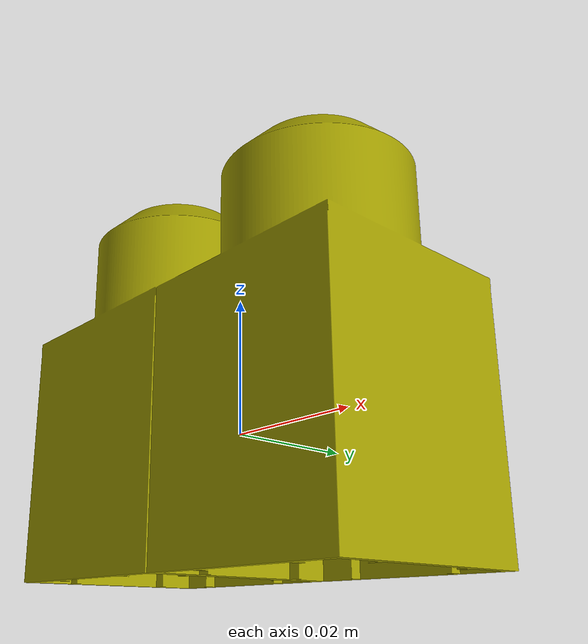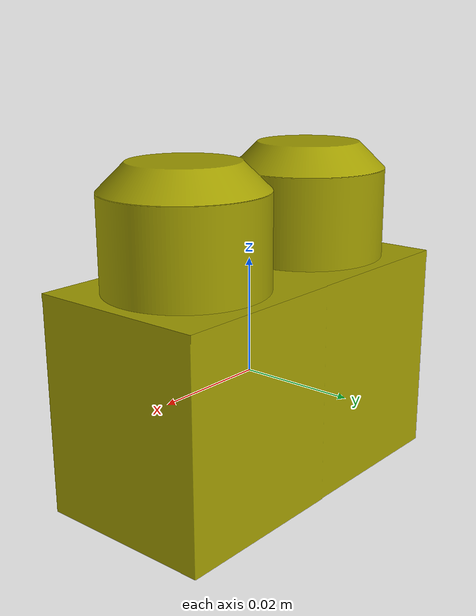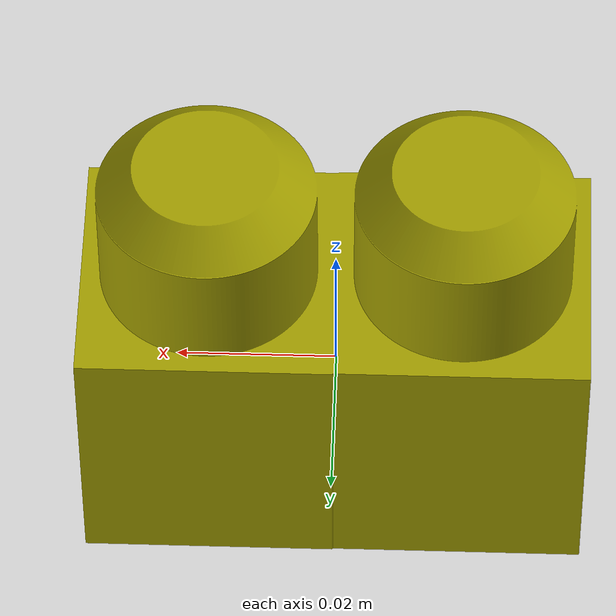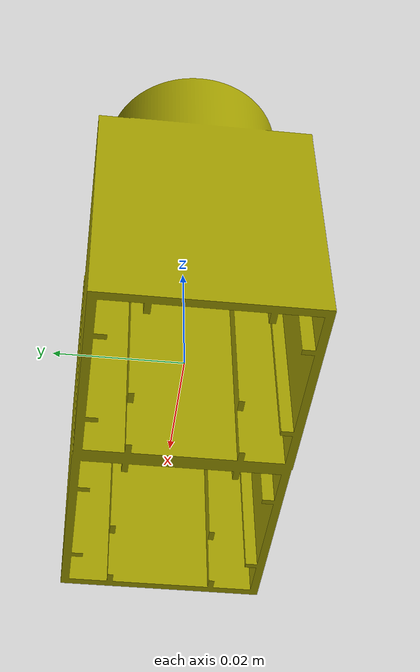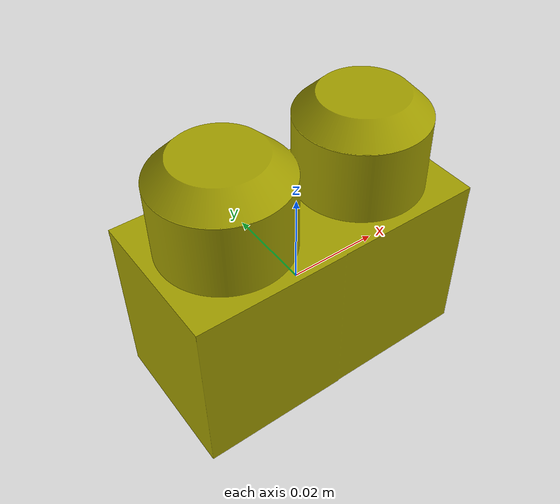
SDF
<?xml version='1.0'?>
<sdf version='1.4'> <!-- changed from 1.5 to be compatible with Gazebo2 -->
  <model name="megabloks1x2_yellow">
    <static>false</static>
    <link name="blok">
      <pose>0 0 0 0 0 0</pose>
      <collision name="collision">
        <geometry>
          <box>
	  <size>0.062600000000000003 0.0313 0.0426</size>
          </box>
        </geometry>
	<surface>
	  <friction>
	    <ode>
	      <mu>0.4</mu>
	    </ode>
	  </friction>
	</surface>
      </collision>
      <inertial>
      <mass value="0.0060000000000000001"/>
	<inertia ixx="0.00001" iyy="0.00001" izz="0.00001" />
      </inertial>
      <visual name="visual">
        <pose>0 0 -0.02 0 0 0</pose>
        <geometry>
          <mesh>
            <uri>model://megabloks1x2_yellow/meshes/model.dae</uri>
          </mesh>
        </geometry>
      </visual>
    </link>
  </model>
</sdf>
